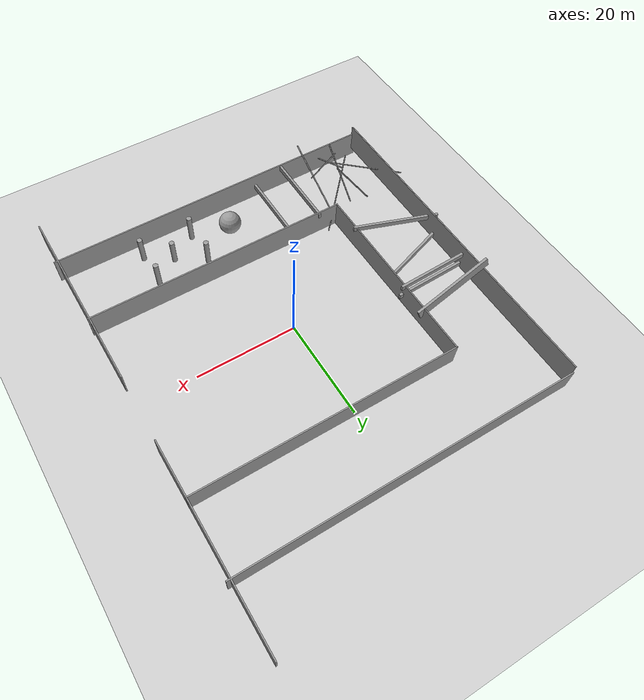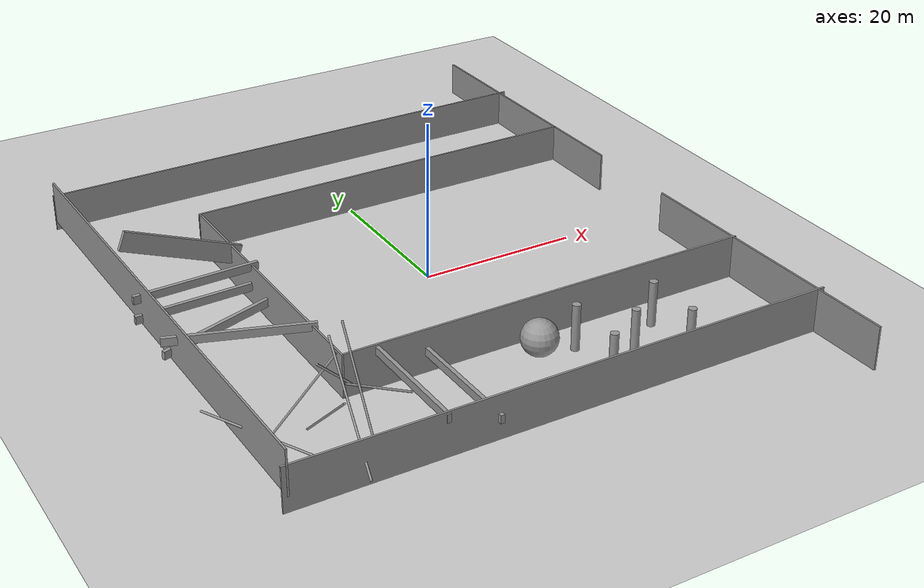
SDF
<sdf version="1.6">
 <world name="default">
  <model name="ground_plane">
   <static>1</static>
   <link name="link">
    <collision name="collision">
     <geometry><plane><normal>0 0 1</normal><size>100 100</size></plane></geometry>
     <surface><friction><ode><mu>100</mu><mu2>50</mu2></ode></friction></surface>
    </collision>
    <visual name="visual">
     <cast_shadows>0</cast_shadows>
     <geometry><plane><normal>0 0 1</normal><size>100 100</size></plane></geometry>
     <material>
      <script><uri>file://media/materials/scripts/gazebo.material</uri><name>Gazebo/Grey</name></script>
     </material>
    </visual>
   </link>
  </model>
  <model name="prueba_dron_0_0">
   <link name="link">
    <pose>-5.24977 -22.9832 0 0 -0 0</pose>
    <inertial>
     <mass>85.7654</mass>
     <inertia><ixx>212.016</ixx><ixy>0</ixy><ixz>0</ixz><iyy>32312.3</iyy><iyz>0</iyz><izz>32101.1</izz></inertia>
    </inertial>
    <visual name="visual">
     <geometry><box><size>67.018 0.235169 5.44144</size></box></geometry>
     <material>
      <script><name>Gazebo/Grey</name><uri>file://media/materials/scripts/gazebo.material</uri></script>
      <ambient>0.3 0.3 0.3 1</ambient>
      <diffuse>0.7 0.7 0.7 1</diffuse>
      <specular>0.01 0.01 0.01 1</specular>
      <emissive>0 0 0 1</emissive>
     </material>
    </visual>
    <collision name="collision">
     <geometry><box><size>67.018 0.235169 5.44144</size></box></geometry>
     <surface>
      <friction>
       <ode><mu>1</mu><mu2>1</mu2><fdir1>0 0 0</fdir1><slip1>0</slip1><slip2>0</slip2></ode>
       <torsional>
        <coefficient>1</coefficient>
        <patch_radius>0</patch_radius>
        <surface_radius>0</surface_radius>
        <use_patch_radius>1</use_patch_radius>
        <ode><slip>0</slip></ode>
       </torsional>
      </friction>
      <bounce><restitution_coefficient>0</restitution_coefficient><threshold>1e+06</threshold></bounce>
      <contact>
       <collide_without_contact>0</collide_without_contact>
       <collide_without_contact_bitmask>1</collide_without_contact_bitmask>
       <collide_bitmask>1</collide_bitmask>
       <ode>
        <soft_cfm>0</soft_cfm>
        <soft_erp>0.2</soft_erp>
        <kp>1e+13</kp>
        <kd>1</kd>
        <max_vel>0.01</max_vel>
        <min_depth>0</min_depth>
       </ode>
       <bullet>
        <split_impulse>1</split_impulse>
        <split_impulse_penetration_threshold>-0.01</split_impulse_penetration_threshold>
        <soft_cfm>0</soft_cfm>
        <soft_erp>0.2</soft_erp>
        <kp>1e+13</kp>
        <kd>1</kd>
       </bullet>
      </contact>
     </surface>
    </collision>
   </link>
   <link name="link_0">
    <pose>12.4694 -19.5562 -0 0 -0 0</pose>
    <inertial>
     <mass>5.87851</mass>
     <inertia><ixx>17.2959</ixx><ixy>0</ixy><ixz>0</ixz><iyy>17.2959</iyy><iyz>0</iyz><izz>0.734814</izz></inertia>
    </inertial>
    <visual name="visual">
     <geometry><cylinder><radius>0.5</radius><length>5.87852</length></cylinder></geometry>
     <material>
      <lighting>1</lighting>
      <script><uri>file://media/materials/scripts/gazebo.material</uri><name>Gazebo/Grey</name></script>
      <ambient>0.3 0.3 0.3 1</ambient>
      <diffuse>0.7 0.7 0.7 1</diffuse>
      <specular>0.01 0.01 0.01 1</specular>
      <emissive>0 0 0 1</emissive>
     </material>
    </visual>
    <collision name="collision">
     <geometry><cylinder><radius>0.5</radius><length>5.87852</length></cylinder></geometry>
     <surface>
      <friction>
       <ode><mu>1</mu><mu2>1</mu2><fdir1>0 0 0</fdir1><slip1>0</slip1><slip2>0</slip2></ode>
       <torsional>
        <coefficient>1</coefficient>
        <patch_radius>0</patch_radius>
        <surface_radius>0</surface_radius>
        <use_patch_radius>1</use_patch_radius>
        <ode><slip>0</slip></ode>
       </torsional>
      </friction>
      <bounce><restitution_coefficient>0</restitution_coefficient><threshold>1e+06</threshold></bounce>
      <contact>
       <collide_without_contact>0</collide_without_contact>
       <collide_without_contact_bitmask>1</collide_without_contact_bitmask>
       <collide_bitmask>1</collide_bitmask>
       <ode>
        <soft_cfm>0</soft_cfm>
        <soft_erp>0.2</soft_erp>
        <kp>1e+13</kp>
        <kd>1</kd>
        <max_vel>0.01</max_vel>
        <min_depth>0</min_depth>
       </ode>
       <bullet>
        <split_impulse>1</split_impulse>
        <split_impulse_penetration_threshold>-0.01</split_impulse_penetration_threshold>
        <soft_cfm>0</soft_cfm>
        <soft_erp>0.2</soft_erp>
        <kp>1e+13</kp>
        <kd>1</kd>
       </bullet>
      </contact>
     </surface>
    </collision>
   </link>
   <link name="link_1">
    <pose>12.4694 -12.5562 -0 0 -0 0</pose>
    <inertial>
     <mass>5.95576</mass>
     <inertia><ixx>17.977</ixx><ixy>0</ixy><ixz>0</ixz><iyy>17.977</iyy><iyz>0</iyz><izz>0.74447</izz></inertia>
    </inertial>
    <visual name="visual">
     <geometry><cylinder><radius>0.5</radius><length>5.95576</length></cylinder></geometry>
     <material>
      <lighting>1</lighting>
      <script><uri>file://media/materials/scripts/gazebo.material</uri><name>Gazebo/Grey</name></script>
      <ambient>0.3 0.3 0.3 1</ambient>
      <diffuse>0.7 0.7 0.7 1</diffuse>
      <specular>0.01 0.01 0.01 1</specular>
      <emissive>0 0 0 1</emissive>
     </material>
    </visual>
    <collision name="collision">
     <geometry><cylinder><radius>0.5</radius><length>5.95576</length></cylinder></geometry>
     <surface>
      <friction>
       <ode><mu>1</mu><mu2>1</mu2><fdir1>0 0 0</fdir1><slip1>0</slip1><slip2>0</slip2></ode>
       <torsional>
        <coefficient>1</coefficient>
        <patch_radius>0</patch_radius>
        <surface_radius>0</surface_radius>
        <use_patch_radius>1</use_patch_radius>
        <ode><slip>0</slip></ode>
       </torsional>
      </friction>
      <bounce><restitution_coefficient>0</restitution_coefficient><threshold>1e+06</threshold></bounce>
      <contact>
       <collide_without_contact>0</collide_without_contact>
       <collide_without_contact_bitmask>1</collide_without_contact_bitmask>
       <collide_bitmask>1</collide_bitmask>
       <ode>
        <soft_cfm>0</soft_cfm>
        <soft_erp>0.2</soft_erp>
        <kp>1e+13</kp>
        <kd>1</kd>
        <max_vel>0.01</max_vel>
        <min_depth>0</min_depth>
       </ode>
       <bullet>
        <split_impulse>1</split_impulse>
        <split_impulse_penetration_threshold>-0.01</split_impulse_penetration_threshold>
        <soft_cfm>0</soft_cfm>
        <soft_erp>0.2</soft_erp>
        <kp>1e+13</kp>
        <kd>1</kd>
       </bullet>
      </contact>
     </surface>
    </collision>
   </link>
   <link name="link_2">
    <pose>7.46938 -16.1137 -0 0 -0 0</pose>
    <inertial>
     <mass>5.24847</mass>
     <inertia><ixx>12.3761</ixx><ixy>0</ixy><ixz>0</ixz><iyy>12.3761</iyy><iyz>0</iyz><izz>0.656059</izz></inertia>
    </inertial>
    <visual name="visual">
     <geometry><cylinder><radius>0.5</radius><length>5.24847</length></cylinder></geometry>
     <material>
      <lighting>1</lighting>
      <script><uri>file://media/materials/scripts/gazebo.material</uri><name>Gazebo/Grey</name></script>
      <ambient>0.3 0.3 0.3 1</ambient>
      <diffuse>0.7 0.7 0.7 1</diffuse>
      <specular>0.01 0.01 0.01 1</specular>
      <emissive>0 0 0 1</emissive>
     </material>
    </visual>
    <collision name="collision">
     <geometry><cylinder><radius>0.5</radius><length>5.24847</length></cylinder></geometry>
     <surface>
      <friction>
       <ode><mu>1</mu><mu2>1</mu2><fdir1>0 0 0</fdir1><slip1>0</slip1><slip2>0</slip2></ode>
       <torsional>
        <coefficient>1</coefficient>
        <patch_radius>0</patch_radius>
        <surface_radius>0</surface_radius>
        <use_patch_radius>1</use_patch_radius>
        <ode><slip>0</slip></ode>
       </torsional>
      </friction>
      <bounce><restitution_coefficient>0</restitution_coefficient><threshold>1e+06</threshold></bounce>
      <contact>
       <collide_without_contact>0</collide_without_contact>
       <collide_without_contact_bitmask>1</collide_without_contact_bitmask>
       <collide_bitmask>1</collide_bitmask>
       <ode>
        <soft_cfm>0</soft_cfm>
        <soft_erp>0.2</soft_erp>
        <kp>1e+13</kp>
        <kd>1</kd>
        <max_vel>0.01</max_vel>
        <min_depth>0</min_depth>
       </ode>
       <bullet>
        <split_impulse>1</split_impulse>
        <split_impulse_penetration_threshold>-0.01</split_impulse_penetration_threshold>
        <soft_cfm>0</soft_cfm>
        <soft_erp>0.2</soft_erp>
        <kp>1e+13</kp>
        <kd>1</kd>
       </bullet>
      </contact>
     </surface>
    </collision>
   </link>
   <link name="link_3">
    <pose>1.98284 -12.5562 -0 0 -0 0</pose>
    <inertial>
     <mass>6.1347</mass>
     <inertia><ixx>19.6231</ixx><ixy>0</ixy><ixz>0</ixz><iyy>19.6231</iyy><iyz>0</iyz><izz>0.766838</izz></inertia>
    </inertial>
    <visual name="visual">
     <geometry><cylinder><radius>0.5</radius><length>6.1347</length></cylinder></geometry>
     <material>
      <lighting>1</lighting>
      <script><uri>file://media/materials/scripts/gazebo.material</uri><name>Gazebo/Grey</name></script>
      <ambient>0.3 0.3 0.3 1</ambient>
      <diffuse>0.7 0.7 0.7 1</diffuse>
      <specular>0.01 0.01 0.01 1</specular>
      <emissive>0 0 0 1</emissive>
     </material>
    </visual>
    <collision name="collision">
     <geometry><cylinder><radius>0.5</radius><length>6.1347</length></cylinder></geometry>
     <surface>
      <friction>
       <ode><mu>1</mu><mu2>1</mu2><fdir1>0 0 0</fdir1><slip1>0</slip1><slip2>0</slip2></ode>
       <torsional>
        <coefficient>1</coefficient>
        <patch_radius>0</patch_radius>
        <surface_radius>0</surface_radius>
        <use_patch_radius>1</use_patch_radius>
        <ode><slip>0</slip></ode>
       </torsional>
      </friction>
      <bounce><restitution_coefficient>0</restitution_coefficient><threshold>1e+06</threshold></bounce>
      <contact>
       <collide_without_contact>0</collide_without_contact>
       <collide_without_contact_bitmask>1</collide_without_contact_bitmask>
       <collide_bitmask>1</collide_bitmask>
       <ode>
        <soft_cfm>0</soft_cfm>
        <soft_erp>0.2</soft_erp>
        <kp>1e+13</kp>
        <kd>1</kd>
        <max_vel>0.01</max_vel>
        <min_depth>0</min_depth>
       </ode>
       <bullet>
        <split_impulse>1</split_impulse>
        <split_impulse_penetration_threshold>-0.01</split_impulse_penetration_threshold>
        <soft_cfm>0</soft_cfm>
        <soft_erp>0.2</soft_erp>
        <kp>1e+13</kp>
        <kd>1</kd>
       </bullet>
      </contact>
     </surface>
    </collision>
   </link>
   <link name="link_4">
    <pose>2.03774 -19.5562 -0 0 -0 0</pose>
    <inertial>
     <mass>5.97726</mass>
     <inertia><ixx>18.1697</ixx><ixy>0</ixy><ixz>0</ixz><iyy>18.1697</iyy><iyz>0</iyz><izz>0.747158</izz></inertia>
    </inertial>
    <visual name="visual">
     <geometry><cylinder><radius>0.5</radius><length>5.97727</length></cylinder></geometry>
     <material>
      <lighting>1</lighting>
      <script><uri>file://media/materials/scripts/gazebo.material</uri><name>Gazebo/Grey</name></script>
      <ambient>0.3 0.3 0.3 1</ambient>
      <diffuse>0.7 0.7 0.7 1</diffuse>
      <specular>0.01 0.01 0.01 1</specular>
      <emissive>0 0 0 1</emissive>
     </material>
    </visual>
    <collision name="collision">
     <geometry><cylinder><radius>0.5</radius><length>5.97727</length></cylinder></geometry>
     <surface>
      <friction>
       <ode><mu>1</mu><mu2>1</mu2><fdir1>0 0 0</fdir1><slip1>0</slip1><slip2>0</slip2></ode>
       <torsional>
        <coefficient>1</coefficient>
        <patch_radius>0</patch_radius>
        <surface_radius>0</surface_radius>
        <use_patch_radius>1</use_patch_radius>
        <ode><slip>0</slip></ode>
       </torsional>
      </friction>
      <bounce><restitution_coefficient>0</restitution_coefficient><threshold>1e+06</threshold></bounce>
      <contact>
       <collide_without_contact>0</collide_without_contact>
       <collide_without_contact_bitmask>1</collide_without_contact_bitmask>
       <collide_bitmask>1</collide_bitmask>
       <ode>
        <soft_cfm>0</soft_cfm>
        <soft_erp>0.2</soft_erp>
        <kp>1e+13</kp>
        <kd>1</kd>
        <max_vel>0.01</max_vel>
        <min_depth>0</min_depth>
       </ode>
       <bullet>
        <split_impulse>1</split_impulse>
        <split_impulse_penetration_threshold>-0.01</split_impulse_penetration_threshold>
        <soft_cfm>0</soft_cfm>
        <soft_erp>0.2</soft_erp>
        <kp>1e+13</kp>
        <kd>1</kd>
       </bullet>
      </contact>
     </surface>
    </collision>
   </link>
   <link name="link_5">
    <pose>-4.60337 -15.2115 2.23467 0 -0 0</pose>
    <inertial>
     <mass>78.0965</mass>
     <inertia><ixx>142.687</ixx><ixy>0</ixy><ixz>0</ixz><iyy>142.687</iyy><iyz>0</iyz><izz>142.687</izz></inertia>
    </inertial>
    <visual name="visual">
     <geometry><sphere><radius>2.13721</radius></sphere></geometry>
     <material>
      <lighting>1</lighting>
      <script><uri>file://media/materials/scripts/gazebo.material</uri><name>Gazebo/Grey</name></script>
      <ambient>0.3 0.3 0.3 1</ambient>
      <diffuse>0.7 0.7 0.7 1</diffuse>
      <specular>0.01 0.01 0.01 1</specular>
      <emissive>0 0 0 1</emissive>
     </material>
    </visual>
    <collision name="collision">
     <geometry><sphere><radius>2.13721</radius></sphere></geometry>
     <surface>
      <friction>
       <ode><mu>1</mu><mu2>1</mu2><fdir1>0 0 0</fdir1><slip1>0</slip1><slip2>0</slip2></ode>
       <torsional>
        <coefficient>1</coefficient>
        <patch_radius>0</patch_radius>
        <surface_radius>0</surface_radius>
        <use_patch_radius>1</use_patch_radius>
        <ode><slip>0</slip></ode>
       </torsional>
      </friction>
      <bounce><restitution_coefficient>0</restitution_coefficient><threshold>1e+06</threshold></bounce>
      <contact>
       <collide_without_contact>0</collide_without_contact>
       <collide_without_contact_bitmask>1</collide_without_contact_bitmask>
       <collide_bitmask>1</collide_bitmask>
       <ode>
        <soft_cfm>0</soft_cfm>
        <soft_erp>0.2</soft_erp>
        <kp>1e+13</kp>
        <kd>1</kd>
        <max_vel>0.01</max_vel>
        <min_depth>0</min_depth>
       </ode>
       <bullet>
        <split_impulse>1</split_impulse>
        <split_impulse_penetration_threshold>-0.01</split_impulse_penetration_threshold>
        <soft_cfm>0</soft_cfm>
        <soft_erp>0.2</soft_erp>
        <kp>1e+13</kp>
        <kd>1</kd>
       </bullet>
      </contact>
     </surface>
    </collision>
   </link>
   <link name="link_6">
    <pose>-14.4826 -15.8376 -0 0 -0 0</pose>
    <inertial>
     <mass>7.64164</mass>
     <inertia><ixx>152.705</ixx><ixy>0</ixy><ixz>0</ixz><iyy>0.792526</iyy><iyz>0</iyz><izz>152.224</izz></inertia>
    </inertial>
    <visual name="visual">
     <geometry><box><size>0.494495 15.4531 1</size></box></geometry>
     <material>
      <lighting>1</lighting>
      <script><uri>file://media/materials/scripts/gazebo.material</uri><name>Gazebo/Grey</name></script>
      <ambient>0.3 0.3 0.3 1</ambient>
      <diffuse>0.7 0.7 0.7 1</diffuse>
      <specular>0.01 0.01 0.01 1</specular>
      <emissive>0 0 0 1</emissive>
     </material>
    </visual>
    <collision name="collision">
     <geometry><box><size>0.494495 15.4531 1</size></box></geometry>
     <surface>
      <friction>
       <ode><mu>1</mu><mu2>1</mu2><fdir1>0 0 0</fdir1><slip1>0</slip1><slip2>0</slip2></ode>
       <torsional>
        <coefficient>1</coefficient>
        <patch_radius>0</patch_radius>
        <surface_radius>0</surface_radius>
        <use_patch_radius>1</use_patch_radius>
        <ode><slip>0</slip></ode>
       </torsional>
      </friction>
      <bounce><restitution_coefficient>0</restitution_coefficient><threshold>1e+06</threshold></bounce>
      <contact>
       <collide_without_contact>0</collide_without_contact>
       <collide_without_contact_bitmask>1</collide_without_contact_bitmask>
       <collide_bitmask>1</collide_bitmask>
       <ode>
        <soft_cfm>0</soft_cfm>
        <soft_erp>0.2</soft_erp>
        <kp>1e+13</kp>
        <kd>1</kd>
        <max_vel>0.01</max_vel>
        <min_depth>0</min_depth>
       </ode>
       <bullet>
        <split_impulse>1</split_impulse>
        <split_impulse_penetration_threshold>-0.01</split_impulse_penetration_threshold>
        <soft_cfm>0</soft_cfm>
        <soft_erp>0.2</soft_erp>
        <kp>1e+13</kp>
        <kd>1</kd>
       </bullet>
      </contact>
     </surface>
    </collision>
   </link>
   <link name="link_6_clone">
    <pose>-20.5306 -15.5562 2.00301 0 -0 0</pose>
    <inertial>
     <mass>7.64164</mass>
     <inertia><ixx>152.705</ixx><ixy>0</ixy><ixz>0</ixz><iyy>0.792526</iyy><iyz>0</iyz><izz>152.224</izz></inertia>
    </inertial>
    <visual name="visual">
     <geometry><box><size>0.494495 15.4531 1</size></box></geometry>
     <material>
      <lighting>1</lighting>
      <script><uri>file://media/materials/scripts/gazebo.material</uri><name>Gazebo/Grey</name></script>
      <ambient>0.3 0.3 0.3 1</ambient>
      <diffuse>0.7 0.7 0.7 1</diffuse>
      <specular>0.01 0.01 0.01 1</specular>
      <emissive>0 0 0 1</emissive>
      <shader type="pixel"/>
     </material>
    </visual>
    <collision name="collision">
     <geometry><box><size>0.494495 15.4531 1</size></box></geometry>
     <surface>
      <friction>
       <ode><mu>1</mu><mu2>1</mu2><fdir1>0 0 0</fdir1><slip1>0</slip1><slip2>0</slip2></ode>
       <torsional>
        <coefficient>1</coefficient>
        <patch_radius>0</patch_radius>
        <surface_radius>0</surface_radius>
        <use_patch_radius>1</use_patch_radius>
        <ode><slip>0</slip></ode>
       </torsional>
      </friction>
      <bounce><restitution_coefficient>0</restitution_coefficient><threshold>1e+06</threshold></bounce>
      <contact>
       <collide_without_contact>0</collide_without_contact>
       <collide_without_contact_bitmask>1</collide_without_contact_bitmask>
       <collide_bitmask>1</collide_bitmask>
       <ode>
        <soft_cfm>0</soft_cfm>
        <soft_erp>0.2</soft_erp>
        <kp>1e+13</kp>
        <kd>1</kd>
        <max_vel>0.01</max_vel>
        <min_depth>0</min_depth>
       </ode>
       <bullet>
        <split_impulse>1</split_impulse>
        <split_impulse_penetration_threshold>-0.01</split_impulse_penetration_threshold>
        <soft_cfm>0</soft_cfm>
        <soft_erp>0.2</soft_erp>
        <kp>1e+13</kp>
        <kd>1</kd>
       </bullet>
      </contact>
     </surface>
    </collision>
   </link>
   <link name="link_6_clone_clone">
    <pose>-32.0268 1.35833 2.56444 0 -0 1.23777</pose>
    <inertial>
     <mass>8.31401</mass>
     <inertia><ixx>196.537</ixx><ixy>0</ixy><ixz>0</ixz><iyy>0.862258</iyy><iyz>0</iyz><izz>196.013</izz></inertia>
    </inertial>
    <visual name="visual">
     <geometry><box><size>0.494495 16.8128 1</size></box></geometry>
     <material>
      <lighting>1</lighting>
      <script><uri>file://media/materials/scripts/gazebo.material</uri><name>Gazebo/Grey</name></script>
      <ambient>0.3 0.3 0.3 1</ambient>
      <diffuse>0.7 0.7 0.7 1</diffuse>
      <specular>0.01 0.01 0.01 1</specular>
      <emissive>0 0 0 1</emissive>
      <shader type="pixel"/>
     </material>
    </visual>
    <collision name="collision">
     <geometry><box><size>0.494495 16.8128 1</size></box></geometry>
     <surface>
      <friction>
       <ode><mu>1</mu><mu2>1</mu2><fdir1>0 0 0</fdir1><slip1>0</slip1><slip2>0</slip2></ode>
       <torsional>
        <coefficient>1</coefficient>
        <patch_radius>0</patch_radius>
        <surface_radius>0</surface_radius>
        <use_patch_radius>1</use_patch_radius>
        <ode><slip>0</slip></ode>
       </torsional>
      </friction>
      <bounce><restitution_coefficient>0</restitution_coefficient><threshold>1e+06</threshold></bounce>
      <contact>
       <collide_without_contact>0</collide_without_contact>
       <collide_without_contact_bitmask>1</collide_without_contact_bitmask>
       <collide_bitmask>1</collide_bitmask>
       <ode>
        <soft_cfm>0</soft_cfm>
        <soft_erp>0.2</soft_erp>
        <kp>1e+13</kp>
        <kd>1</kd>
        <max_vel>0.01</max_vel>
        <min_depth>0</min_depth>
       </ode>
       <bullet>
        <split_impulse>1</split_impulse>
        <split_impulse_penetration_threshold>-0.01</split_impulse_penetration_threshold>
        <soft_cfm>0</soft_cfm>
        <soft_erp>0.2</soft_erp>
        <kp>1e+13</kp>
        <kd>1</kd>
       </bullet>
      </contact>
     </surface>
    </collision>
   </link>
   <link name="link_6_clone_clone_clone">
    <pose>-31.987 7.95678 -0.088563 0 -0 1.89398</pose>
    <inertial>
     <mass>7.64164</mass>
     <inertia><ixx>152.705</ixx><ixy>0</ixy><ixz>0</ixz><iyy>0.792526</iyy><iyz>0</iyz><izz>152.224</izz></inertia>
    </inertial>
    <visual name="visual">
     <geometry><box><size>0.494495 15.4531 1</size></box></geometry>
     <material>
      <lighting>1</lighting>
      <script><uri>file://media/materials/scripts/gazebo.material</uri><name>Gazebo/Grey</name></script>
      <ambient>0.3 0.3 0.3 1</ambient>
      <diffuse>0.7 0.7 0.7 1</diffuse>
      <specular>0.01 0.01 0.01 1</specular>
      <emissive>0 0 0 1</emissive>
      <shader type="pixel"/>
     </material>
    </visual>
    <collision name="collision">
     <geometry><box><size>0.494495 15.4531 1</size></box></geometry>
     <surface>
      <friction>
       <ode><mu>1</mu><mu2>1</mu2><fdir1>0 0 0</fdir1><slip1>0</slip1><slip2>0</slip2></ode>
       <torsional>
        <coefficient>1</coefficient>
        <patch_radius>0</patch_radius>
        <surface_radius>0</surface_radius>
        <use_patch_radius>1</use_patch_radius>
        <ode><slip>0</slip></ode>
       </torsional>
      </friction>
      <bounce><restitution_coefficient>0</restitution_coefficient><threshold>1e+06</threshold></bounce>
      <contact>
       <collide_without_contact>0</collide_without_contact>
       <collide_without_contact_bitmask>1</collide_without_contact_bitmask>
       <collide_bitmask>1</collide_bitmask>
       <ode>
        <soft_cfm>0</soft_cfm>
        <soft_erp>0.2</soft_erp>
        <kp>1e+13</kp>
        <kd>1</kd>
        <max_vel>0.01</max_vel>
        <min_depth>0</min_depth>
       </ode>
       <bullet>
        <split_impulse>1</split_impulse>
        <split_impulse_penetration_threshold>-0.01</split_impulse_penetration_threshold>
        <soft_cfm>0</soft_cfm>
        <soft_erp>0.2</soft_erp>
        <kp>1e+13</kp>
        <kd>1</kd>
       </bullet>
      </contact>
     </surface>
    </collision>
   </link>
   <link name="link_6_clone_clone_clone_clone">
    <pose>-31.5306 14.4438 -0.088563 0 -0 1.60461</pose>
    <inertial>
     <mass>7.64164</mass>
     <inertia><ixx>152.705</ixx><ixy>0</ixy><ixz>0</ixz><iyy>0.792526</iyy><iyz>0</iyz><izz>152.224</izz></inertia>
    </inertial>
    <visual name="visual">
     <geometry><box><size>0.494495 15.4531 1</size></box></geometry>
     <material>
      <lighting>1</lighting>
      <script><uri>file://media/materials/scripts/gazebo.material</uri><name>Gazebo/Grey</name></script>
      <ambient>0.3 0.3 0.3 1</ambient>
      <diffuse>0.7 0.7 0.7 1</diffuse>
      <specular>0.01 0.01 0.01 1</specular>
      <emissive>0 0 0 1</emissive>
      <shader type="pixel"/>
     </material>
    </visual>
    <collision name="collision">
     <geometry><box><size>0.494495 15.4531 1</size></box></geometry>
     <surface>
      <friction>
       <ode><mu>1</mu><mu2>1</mu2><fdir1>0 0 0</fdir1><slip1>0</slip1><slip2>0</slip2></ode>
       <torsional>
        <coefficient>1</coefficient>
        <patch_radius>0</patch_radius>
        <surface_radius>0</surface_radius>
        <use_patch_radius>1</use_patch_radius>
        <ode><slip>0</slip></ode>
       </torsional>
      </friction>
      <bounce><restitution_coefficient>0</restitution_coefficient><threshold>1e+06</threshold></bounce>
      <contact>
       <collide_without_contact>0</collide_without_contact>
       <collide_without_contact_bitmask>1</collide_without_contact_bitmask>
       <collide_bitmask>1</collide_bitmask>
       <ode>
        <soft_cfm>0</soft_cfm>
        <soft_erp>0.2</soft_erp>
        <kp>1e+13</kp>
        <kd>1</kd>
        <max_vel>0.01</max_vel>
        <min_depth>0</min_depth>
       </ode>
       <bullet>
        <split_impulse>1</split_impulse>
        <split_impulse_penetration_threshold>-0.01</split_impulse_penetration_threshold>
        <soft_cfm>0</soft_cfm>
        <soft_erp>0.2</soft_erp>
        <kp>1e+13</kp>
        <kd>1</kd>
       </bullet>
      </contact>
     </surface>
    </collision>
   </link>
   <link name="link_6_clone_clone_clone_clone_clone">
    <pose>-31.5539 14.445 2.48955 0 -0 1.60461</pose>
    <inertial>
     <mass>7.64164</mass>
     <inertia><ixx>152.705</ixx><ixy>0</ixy><ixz>0</ixz><iyy>0.792526</iyy><iyz>0</iyz><izz>152.224</izz></inertia>
    </inertial>
    <visual name="visual">
     <geometry><box><size>0.494495 15.4531 1</size></box></geometry>
     <material>
      <lighting>1</lighting>
      <script><uri>file://media/materials/scripts/gazebo.material</uri><name>Gazebo/Grey</name></script>
      <ambient>0.3 0.3 0.3 1</ambient>
      <diffuse>0.7 0.7 0.7 1</diffuse>
      <specular>0.01 0.01 0.01 1</specular>
      <emissive>0 0 0 1</emissive>
      <shader type="pixel"/>
     </material>
    </visual>
    <collision name="collision">
     <geometry><box><size>0.494495 15.4531 1</size></box></geometry>
     <surface>
      <friction>
       <ode><mu>1</mu><mu2>1</mu2><fdir1>0 0 0</fdir1><slip1>0</slip1><slip2>0</slip2></ode>
       <torsional>
        <coefficient>1</coefficient>
        <patch_radius>0</patch_radius>
        <surface_radius>0</surface_radius>
        <use_patch_radius>1</use_patch_radius>
        <ode><slip>0</slip></ode>
       </torsional>
      </friction>
      <bounce><restitution_coefficient>0</restitution_coefficient><threshold>1e+06</threshold></bounce>
      <contact>
       <collide_without_contact>0</collide_without_contact>
       <collide_without_contact_bitmask>1</collide_without_contact_bitmask>
       <collide_bitmask>1</collide_bitmask>
       <ode>
        <soft_cfm>0</soft_cfm>
        <soft_erp>0.2</soft_erp>
        <kp>1e+13</kp>
        <kd>1</kd>
        <max_vel>0.01</max_vel>
        <min_depth>0</min_depth>
       </ode>
       <bullet>
        <split_impulse>1</split_impulse>
        <split_impulse_penetration_threshold>-0.01</split_impulse_penetration_threshold>
        <soft_cfm>0</soft_cfm>
        <soft_erp>0.2</soft_erp>
        <kp>1e+13</kp>
        <kd>1</kd>
       </bullet>
      </contact>
     </surface>
    </collision>
   </link>
   <link name="link_6_clone_clone_clone_clone_clone_clone">
    <pose>-30.8869 20.2129 4.11657 0.383286 -0 1.60461</pose>
    <inertial>
     <mass>18.5249</mass>
     <inertia><ixx>377.716</ixx><ixy>0</ixy><ixz>0</ixz><iyy>9.44924</iyy><iyz>0</iyz><izz>369.022</izz></inertia>
    </inertial>
    <visual name="visual">
     <geometry><box><size>0.494495 15.4531 2.42421</size></box></geometry>
     <material>
      <lighting>1</lighting>
      <script><uri>file://media/materials/scripts/gazebo.material</uri><name>Gazebo/Grey</name></script>
      <ambient>0.3 0.3 0.3 1</ambient>
      <diffuse>0.7 0.7 0.7 1</diffuse>
      <specular>0.01 0.01 0.01 1</specular>
      <emissive>0 0 0 1</emissive>
      <shader type="pixel"/>
     </material>
    </visual>
    <collision name="collision">
     <geometry><box><size>0.494495 15.4531 2.42421</size></box></geometry>
     <surface>
      <friction>
       <ode><mu>1</mu><mu2>1</mu2><fdir1>0 0 0</fdir1><slip1>0</slip1><slip2>0</slip2></ode>
       <torsional>
        <coefficient>1</coefficient>
        <patch_radius>0</patch_radius>
        <surface_radius>0</surface_radius>
        <use_patch_radius>1</use_patch_radius>
        <ode><slip>0</slip></ode>
       </torsional>
      </friction>
      <bounce><restitution_coefficient>0</restitution_coefficient><threshold>1e+06</threshold></bounce>
      <contact>
       <collide_without_contact>0</collide_without_contact>
       <collide_without_contact_bitmask>1</collide_without_contact_bitmask>
       <collide_bitmask>1</collide_bitmask>
       <ode>
        <soft_cfm>0</soft_cfm>
        <soft_erp>0.2</soft_erp>
        <kp>1e+13</kp>
        <kd>1</kd>
        <max_vel>0.01</max_vel>
        <min_depth>0</min_depth>
       </ode>
       <bullet>
        <split_impulse>1</split_impulse>
        <split_impulse_penetration_threshold>-0.01</split_impulse_penetration_threshold>
        <soft_cfm>0</soft_cfm>
        <soft_erp>0.2</soft_erp>
        <kp>1e+13</kp>
        <kd>1</kd>
       </bullet>
      </contact>
     </surface>
    </collision>
   </link>
   <link name="link_7">
    <pose>-27.1506 -17.5633 3.42663 -0.522312 0 0</pose>
    <inertial>
     <mass>0.951436</mass>
     <inertia>
      <ixx>19.8593</ixx>
      <ixy>0</ixy>
      <ixz>0</ixz>
      <iyy>19.8593</iyy>
      <iyz>0</iyz>
      <izz>0.0071503</izz>
     </inertia>
    </inertial>
    <visual name="visual">
     <geometry><cylinder><radius>0.122586</radius><length>15.8251</length></cylinder></geometry>
     <material>
      <lighting>1</lighting>
      <script><uri>file://media/materials/scripts/gazebo.material</uri><name>Gazebo/Grey</name></script>
      <ambient>0.3 0.3 0.3 1</ambient>
      <diffuse>0.7 0.7 0.7 1</diffuse>
      <specular>0.01 0.01 0.01 1</specular>
      <emissive>0 0 0 1</emissive>
     </material>
    </visual>
    <collision name="collision">
     <geometry><cylinder><radius>0.122586</radius><length>15.8251</length></cylinder></geometry>
     <surface>
      <friction>
       <ode><mu>1</mu><mu2>1</mu2><fdir1>0 0 0</fdir1><slip1>0</slip1><slip2>0</slip2></ode>
       <torsional>
        <coefficient>1</coefficient>
        <patch_radius>0</patch_radius>
        <surface_radius>0</surface_radius>
        <use_patch_radius>1</use_patch_radius>
        <ode><slip>0</slip></ode>
       </torsional>
      </friction>
      <bounce><restitution_coefficient>0</restitution_coefficient><threshold>1e+06</threshold></bounce>
      <contact>
       <collide_without_contact>0</collide_without_contact>
       <collide_without_contact_bitmask>1</collide_without_contact_bitmask>
       <collide_bitmask>1</collide_bitmask>
       <ode>
        <soft_cfm>0</soft_cfm>
        <soft_erp>0.2</soft_erp>
        <kp>1e+13</kp>
        <kd>1</kd>
        <max_vel>0.01</max_vel>
        <min_depth>0</min_depth>
       </ode>
       <bullet>
        <split_impulse>1</split_impulse>
        <split_impulse_penetration_threshold>-0.01</split_impulse_penetration_threshold>
        <soft_cfm>0</soft_cfm>
        <soft_erp>0.2</soft_erp>
        <kp>1e+13</kp>
        <kd>1</kd>
       </bullet>
      </contact>
     </surface>
    </collision>
   </link>
   <link name="link_7_clone">
    <pose>-24.4361 -15.6879 2.66609 1.11642 -0 0</pose>
    <inertial>
     <mass>0.951436</mass>
     <inertia>
      <ixx>19.8593</ixx>
      <ixy>0</ixy>
      <ixz>0</ixz>
      <iyy>19.8593</iyy>
      <iyz>0</iyz>
      <izz>0.0071503</izz>
     </inertia>
    </inertial>
    <visual name="visual">
     <geometry><cylinder><radius>0.122586</radius><length>15.8251</length></cylinder></geometry>
     <material>
      <lighting>1</lighting>
      <script><uri>file://media/materials/scripts/gazebo.material</uri><name>Gazebo/Grey</name></script>
      <ambient>0.3 0.3 0.3 1</ambient>
      <diffuse>0.7 0.7 0.7 1</diffuse>
      <specular>0.01 0.01 0.01 1</specular>
      <emissive>0 0 0 1</emissive>
      <shader type="pixel"/>
     </material>
    </visual>
    <collision name="collision">
     <geometry><cylinder><radius>0.122586</radius><length>15.8251</length></cylinder></geometry>
     <surface>
      <friction>
       <ode><mu>1</mu><mu2>1</mu2><fdir1>0 0 0</fdir1><slip1>0</slip1><slip2>0</slip2></ode>
       <torsional>
        <coefficient>1</coefficient>
        <patch_radius>0</patch_radius>
        <surface_radius>0</surface_radius>
        <use_patch_radius>1</use_patch_radius>
        <ode><slip>0</slip></ode>
       </torsional>
      </friction>
      <bounce><restitution_coefficient>0</restitution_coefficient><threshold>1e+06</threshold></bounce>
      <contact>
       <collide_without_contact>0</collide_without_contact>
       <collide_without_contact_bitmask>1</collide_without_contact_bitmask>
       <collide_bitmask>1</collide_bitmask>
       <ode>
        <soft_cfm>0</soft_cfm>
        <soft_erp>0.2</soft_erp>
        <kp>1e+13</kp>
        <kd>1</kd>
        <max_vel>0.01</max_vel>
        <min_depth>0</min_depth>
       </ode>
       <bullet>
        <split_impulse>1</split_impulse>
        <split_impulse_penetration_threshold>-0.01</split_impulse_penetration_threshold>
        <soft_cfm>0</soft_cfm>
        <soft_erp>0.2</soft_erp>
        <kp>1e+13</kp>
        <kd>1</kd>
       </bullet>
      </contact>
     </surface>
    </collision>
   </link>
   <link name="link_7_clone_0">
    <pose>-26.3536 -10.8289 1.93794 2.44091 -0.559361 1.76414</pose>
    <inertial>
     <mass>0.951436</mass>
     <inertia>
      <ixx>19.8593</ixx>
      <ixy>0</ixy>
      <ixz>0</ixz>
      <iyy>19.8593</iyy>
      <iyz>0</iyz>
      <izz>0.0071503</izz>
     </inertia>
    </inertial>
    <visual name="visual">
     <geometry><cylinder><radius>0.122586</radius><length>15.8251</length></cylinder></geometry>
     <material>
      <lighting>1</lighting>
      <script><uri>file://media/materials/scripts/gazebo.material</uri><name>Gazebo/Grey</name></script>
      <ambient>0.3 0.3 0.3 1</ambient>
      <diffuse>0.7 0.7 0.7 1</diffuse>
      <specular>0.01 0.01 0.01 1</specular>
      <emissive>0 0 0 1</emissive>
      <shader type="pixel"/>
     </material>
    </visual>
    <collision name="collision">
     <geometry><cylinder><radius>0.122586</radius><length>15.8251</length></cylinder></geometry>
     <surface>
      <friction>
       <ode><mu>1</mu><mu2>1</mu2><fdir1>0 0 0</fdir1><slip1>0</slip1><slip2>0</slip2></ode>
       <torsional>
        <coefficient>1</coefficient>
        <patch_radius>0</patch_radius>
        <surface_radius>0</surface_radius>
        <use_patch_radius>1</use_patch_radius>
        <ode><slip>0</slip></ode>
       </torsional>
      </friction>
      <bounce><restitution_coefficient>0</restitution_coefficient><threshold>1e+06</threshold></bounce>
      <contact>
       <collide_without_contact>0</collide_without_contact>
       <collide_without_contact_bitmask>1</collide_without_contact_bitmask>
       <collide_bitmask>1</collide_bitmask>
       <ode>
        <soft_cfm>0</soft_cfm>
        <soft_erp>0.2</soft_erp>
        <kp>1e+13</kp>
        <kd>1</kd>
        <max_vel>0.01</max_vel>
        <min_depth>0</min_depth>
       </ode>
       <bullet>
        <split_impulse>1</split_impulse>
        <split_impulse_penetration_threshold>-0.01</split_impulse_penetration_threshold>
        <soft_cfm>0</soft_cfm>
        <soft_erp>0.2</soft_erp>
        <kp>1e+13</kp>
        <kd>1</kd>
       </bullet>
      </contact>
     </surface>
    </collision>
   </link>
   <link name="link_7_clone_1">
    <pose>-28.9418 -18.2259 3.34926 -0.959238 0.13543 -0.078519</pose>
    <inertial>
     <mass>0.951436</mass>
     <inertia>
      <ixx>19.8593</ixx>
      <ixy>0</ixy>
      <ixz>0</ixz>
      <iyy>19.8593</iyy>
      <iyz>0</iyz>
      <izz>0.0071503</izz>
     </inertia>
    </inertial>
    <visual name="visual">
     <geometry><cylinder><radius>0.122586</radius><length>15.8251</length></cylinder></geometry>
     <material>
      <lighting>1</lighting>
      <script><uri>file://media/materials/scripts/gazebo.material</uri><name>Gazebo/Grey</name></script>
      <ambient>0.3 0.3 0.3 1</ambient>
      <diffuse>0.7 0.7 0.7 1</diffuse>
      <specular>0.01 0.01 0.01 1</specular>
      <emissive>0 0 0 1</emissive>
      <shader type="pixel"/>
     </material>
    </visual>
    <collision name="collision">
     <geometry><cylinder><radius>0.122586</radius><length>15.8251</length></cylinder></geometry>
     <surface>
      <friction>
       <ode><mu>1</mu><mu2>1</mu2><fdir1>0 0 0</fdir1><slip1>0</slip1><slip2>0</slip2></ode>
       <torsional>
        <coefficient>1</coefficient>
        <patch_radius>0</patch_radius>
        <surface_radius>0</surface_radius>
        <use_patch_radius>1</use_patch_radius>
        <ode><slip>0</slip></ode>
       </torsional>
      </friction>
      <bounce><restitution_coefficient>0</restitution_coefficient><threshold>1e+06</threshold></bounce>
      <contact>
       <collide_without_contact>0</collide_without_contact>
       <collide_without_contact_bitmask>1</collide_without_contact_bitmask>
       <collide_bitmask>1</collide_bitmask>
       <ode>
        <soft_cfm>0</soft_cfm>
        <soft_erp>0.2</soft_erp>
        <kp>1e+13</kp>
        <kd>1</kd>
        <max_vel>0.01</max_vel>
        <min_depth>0</min_depth>
       </ode>
       <bullet>
        <split_impulse>1</split_impulse>
        <split_impulse_penetration_threshold>-0.01</split_impulse_penetration_threshold>
        <soft_cfm>0</soft_cfm>
        <soft_erp>0.2</soft_erp>
        <kp>1e+13</kp>
        <kd>1</kd>
       </bullet>
      </contact>
     </surface>
    </collision>
   </link>
   <link name="link_7_clone_2">
    <pose>-36.2913 -15.4597 0.511136 -1.34267 -0.703766 0.510448</pose>
    <inertial>
     <mass>0.951436</mass>
     <inertia>
      <ixx>19.8593</ixx>
      <ixy>0</ixy>
      <ixz>0</ixz>
      <iyy>19.8593</iyy>
      <iyz>0</iyz>
      <izz>0.0071503</izz>
     </inertia>
    </inertial>
    <visual name="visual">
     <geometry><cylinder><radius>0.122586</radius><length>15.8251</length></cylinder></geometry>
     <material>
      <lighting>1</lighting>
      <script><uri>file://media/materials/scripts/gazebo.material</uri><name>Gazebo/Grey</name></script>
      <ambient>0.3 0.3 0.3 1</ambient>
      <diffuse>0.7 0.7 0.7 1</diffuse>
      <specular>0.01 0.01 0.01 1</specular>
      <emissive>0 0 0 1</emissive>
      <shader type="pixel"/>
     </material>
    </visual>
    <collision name="collision">
     <geometry><cylinder><radius>0.122586</radius><length>15.8251</length></cylinder></geometry>
     <surface>
      <friction>
       <ode><mu>1</mu><mu2>1</mu2><fdir1>0 0 0</fdir1><slip1>0</slip1><slip2>0</slip2></ode>
       <torsional>
        <coefficient>1</coefficient>
        <patch_radius>0</patch_radius>
        <surface_radius>0</surface_radius>
        <use_patch_radius>1</use_patch_radius>
        <ode><slip>0</slip></ode>
       </torsional>
      </friction>
      <bounce><restitution_coefficient>0</restitution_coefficient><threshold>1e+06</threshold></bounce>
      <contact>
       <collide_without_contact>0</collide_without_contact>
       <collide_without_contact_bitmask>1</collide_without_contact_bitmask>
       <collide_bitmask>1</collide_bitmask>
       <ode>
        <soft_cfm>0</soft_cfm>
        <soft_erp>0.2</soft_erp>
        <kp>1e+13</kp>
        <kd>1</kd>
        <max_vel>0.01</max_vel>
        <min_depth>0</min_depth>
       </ode>
       <bullet>
        <split_impulse>1</split_impulse>
        <split_impulse_penetration_threshold>-0.01</split_impulse_penetration_threshold>
        <soft_cfm>0</soft_cfm>
        <soft_erp>0.2</soft_erp>
        <kp>1e+13</kp>
        <kd>1</kd>
       </bullet>
      </contact>
     </surface>
    </collision>
   </link>
   <link name="link_7_clone_3">
    <pose>-30.526 -14.5562 0.113693 0.828801 -0 0</pose>
    <inertial>
     <mass>0.951436</mass>
     <inertia>
      <ixx>19.8593</ixx>
      <ixy>0</ixy>
      <ixz>0</ixz>
      <iyy>19.8593</iyy>
      <iyz>0</iyz>
      <izz>0.0071503</izz>
     </inertia>
    </inertial>
    <visual name="visual">
     <geometry><cylinder><radius>0.122586</radius><length>15.8251</length></cylinder></geometry>
     <material>
      <lighting>1</lighting>
      <script><uri>file://media/materials/scripts/gazebo.material</uri><name>Gazebo/Grey</name></script>
      <ambient>0.3 0.3 0.3 1</ambient>
      <diffuse>0.7 0.7 0.7 1</diffuse>
      <specular>0.01 0.01 0.01 1</specular>
      <emissive>0 0 0 1</emissive>
      <shader type="pixel"/>
     </material>
    </visual>
    <collision name="collision">
     <geometry><cylinder><radius>0.122586</radius><length>15.8251</length></cylinder></geometry>
     <surface>
      <friction>
       <ode><mu>1</mu><mu2>1</mu2><fdir1>0 0 0</fdir1><slip1>0</slip1><slip2>0</slip2></ode>
       <torsional>
        <coefficient>1</coefficient>
        <patch_radius>0</patch_radius>
        <surface_radius>0</surface_radius>
        <use_patch_radius>1</use_patch_radius>
        <ode><slip>0</slip></ode>
       </torsional>
      </friction>
      <bounce><restitution_coefficient>0</restitution_coefficient><threshold>1e+06</threshold></bounce>
      <contact>
       <collide_without_contact>0</collide_without_contact>
       <collide_without_contact_bitmask>1</collide_without_contact_bitmask>
       <collide_bitmask>1</collide_bitmask>
       <ode>
        <soft_cfm>0</soft_cfm>
        <soft_erp>0.2</soft_erp>
        <kp>1e+13</kp>
        <kd>1</kd>
        <max_vel>0.01</max_vel>
        <min_depth>0</min_depth>
       </ode>
       <bullet>
        <split_impulse>1</split_impulse>
        <split_impulse_penetration_threshold>-0.01</split_impulse_penetration_threshold>
        <soft_cfm>0</soft_cfm>
        <soft_erp>0.2</soft_erp>
        <kp>1e+13</kp>
        <kd>1</kd>
       </bullet>
      </contact>
     </surface>
    </collision>
   </link>
   <link name="link_7_clone_4">
    <pose>-32.2181 -11.4726 0.168118 2.49269 -0.031623 -1.98694</pose>
    <inertial>
     <mass>0.951436</mass>
     <inertia>
      <ixx>19.8593</ixx>
      <ixy>0</ixy>
      <ixz>0</ixz>
      <iyy>19.8593</iyy>
      <iyz>0</iyz>
      <izz>0.0071503</izz>
     </inertia>
    </inertial>
    <visual name="visual">
     <geometry><cylinder><radius>0.122586</radius><length>15.8251</length></cylinder></geometry>
     <material>
      <lighting>1</lighting>
      <script><uri>file://media/materials/scripts/gazebo.material</uri><name>Gazebo/Grey</name></script>
      <ambient>0.3 0.3 0.3 1</ambient>
      <diffuse>0.7 0.7 0.7 1</diffuse>
      <specular>0.01 0.01 0.01 1</specular>
      <emissive>0 0 0 1</emissive>
      <shader type="pixel"/>
     </material>
    </visual>
    <collision name="collision">
     <geometry><cylinder><radius>0.122586</radius><length>15.8251</length></cylinder></geometry>
     <surface>
      <friction>
       <ode><mu>1</mu><mu2>1</mu2><fdir1>0 0 0</fdir1><slip1>0</slip1><slip2>0</slip2></ode>
       <torsional>
        <coefficient>1</coefficient>
        <patch_radius>0</patch_radius>
        <surface_radius>0</surface_radius>
        <use_patch_radius>1</use_patch_radius>
        <ode><slip>0</slip></ode>
       </torsional>
      </friction>
      <bounce><restitution_coefficient>0</restitution_coefficient><threshold>1e+06</threshold></bounce>
      <contact>
       <collide_without_contact>0</collide_without_contact>
       <collide_without_contact_bitmask>1</collide_without_contact_bitmask>
       <collide_bitmask>1</collide_bitmask>
       <ode>
        <soft_cfm>0</soft_cfm>
        <soft_erp>0.2</soft_erp>
        <kp>1e+13</kp>
        <kd>1</kd>
        <max_vel>0.01</max_vel>
        <min_depth>0</min_depth>
       </ode>
       <bullet>
        <split_impulse>1</split_impulse>
        <split_impulse_penetration_threshold>-0.01</split_impulse_penetration_threshold>
        <soft_cfm>0</soft_cfm>
        <soft_erp>0.2</soft_erp>
        <kp>1e+13</kp>
        <kd>1</kd>
       </bullet>
      </contact>
     </surface>
    </collision>
   </link>
   <link name="link_clone">
    <pose>-38.2499 10.4038 1.81381 0 -0 -1.5668</pose>
    <inertial>
     <mass>85.7654</mass>
     <inertia><ixx>212.016</ixx><ixy>0</ixy><ixz>0</ixz><iyy>32312.3</iyy><iyz>0</iyz><izz>32101.1</izz></inertia>
    </inertial>
    <visual name="visual">
     <geometry><box><size>67.018 0.235169 5.44144</size></box></geometry>
     <material>
      <script><name>Gazebo/Grey</name><uri>file://media/materials/scripts/gazebo.material</uri></script>
      <ambient>0.3 0.3 0.3 1</ambient>
      <diffuse>0.7 0.7 0.7 1</diffuse>
      <specular>0.01 0.01 0.01 1</specular>
      <emissive>0 0 0 1</emissive>
      <shader type="pixel"/>
     </material>
    </visual>
    <collision name="collision">
     <geometry><box><size>67.018 0.235169 5.44144</size></box></geometry>
     <surface>
      <friction>
       <ode><mu>1</mu><mu2>1</mu2><fdir1>0 0 0</fdir1><slip1>0</slip1><slip2>0</slip2></ode>
       <torsional>
        <coefficient>1</coefficient>
        <patch_radius>0</patch_radius>
        <surface_radius>0</surface_radius>
        <use_patch_radius>1</use_patch_radius>
        <ode><slip>0</slip></ode>
       </torsional>
      </friction>
      <bounce><restitution_coefficient>0</restitution_coefficient><threshold>1e+06</threshold></bounce>
      <contact>
       <collide_without_contact>0</collide_without_contact>
       <collide_without_contact_bitmask>1</collide_without_contact_bitmask>
       <collide_bitmask>1</collide_bitmask>
       <ode>
        <soft_cfm>0</soft_cfm>
        <soft_erp>0.2</soft_erp>
        <kp>1e+13</kp>
        <kd>1</kd>
        <max_vel>0.01</max_vel>
        <min_depth>0</min_depth>
       </ode>
       <bullet>
        <split_impulse>1</split_impulse>
        <split_impulse_penetration_threshold>-0.01</split_impulse_penetration_threshold>
        <soft_cfm>0</soft_cfm>
        <soft_erp>0.2</soft_erp>
        <kp>1e+13</kp>
        <kd>1</kd>
       </bullet>
      </contact>
     </surface>
    </collision>
   </link>
   <link name="link_clone_0">
    <pose>-5.09065 44.0154 1e-06 0 -0 0</pose>
    <inertial>
     <mass>85.7654</mass>
     <inertia><ixx>212.016</ixx><ixy>0</ixy><ixz>0</ixz><iyy>32312.3</iyy><iyz>0</iyz><izz>32101.1</izz></inertia>
    </inertial>
    <visual name="visual">
     <geometry><box><size>67.018 0.235169 5.44144</size></box></geometry>
     <material>
      <script><name>Gazebo/Grey</name><uri>file://media/materials/scripts/gazebo.material</uri></script>
      <ambient>0.3 0.3 0.3 1</ambient>
      <diffuse>0.7 0.7 0.7 1</diffuse>
      <specular>0.01 0.01 0.01 1</specular>
      <emissive>0 0 0 1</emissive>
      <shader type="pixel"/>
     </material>
    </visual>
    <collision name="collision">
     <geometry><box><size>67.018 0.235169 5.44144</size></box></geometry>
     <surface>
      <friction>
       <ode><mu>1</mu><mu2>1</mu2><fdir1>0 0 0</fdir1><slip1>0</slip1><slip2>0</slip2></ode>
       <torsional>
        <coefficient>1</coefficient>
        <patch_radius>0</patch_radius>
        <surface_radius>0</surface_radius>
        <use_patch_radius>1</use_patch_radius>
        <ode><slip>0</slip></ode>
       </torsional>
      </friction>
      <bounce><restitution_coefficient>0</restitution_coefficient><threshold>1e+06</threshold></bounce>
      <contact>
       <collide_without_contact>0</collide_without_contact>
       <collide_without_contact_bitmask>1</collide_without_contact_bitmask>
       <collide_bitmask>1</collide_bitmask>
       <ode>
        <soft_cfm>0</soft_cfm>
        <soft_erp>0.2</soft_erp>
        <kp>1e+13</kp>
        <kd>1</kd>
        <max_vel>0.01</max_vel>
        <min_depth>0</min_depth>
       </ode>
       <bullet>
        <split_impulse>1</split_impulse>
        <split_impulse_penetration_threshold>-0.01</split_impulse_penetration_threshold>
        <soft_cfm>0</soft_cfm>
        <soft_erp>0.2</soft_erp>
        <kp>1e+13</kp>
        <kd>1</kd>
       </bullet>
      </contact>
     </surface>
    </collision>
   </link>
   <link name="link_clone_1">
    <pose>1.45578 29.8545 0 0 -0 0</pose>
    <inertial>
     <mass>67.2785</mass>
     <inertia><ixx>166.316</ixx><ixy>0</ixy><ixz>0</ixz><iyy>15661.6</iyy><iyz>0</iyz><izz>15495.9</izz></inertia>
    </inertial>
    <visual name="visual">
     <geometry><box><size>52.5721 0.235169 5.44144</size></box></geometry>
     <material>
      <script><name>Gazebo/Grey</name><uri>file://media/materials/scripts/gazebo.material</uri></script>
      <ambient>0.3 0.3 0.3 1</ambient>
      <diffuse>0.7 0.7 0.7 1</diffuse>
      <specular>0.01 0.01 0.01 1</specular>
      <emissive>0 0 0 1</emissive>
      <shader type="pixel"/>
     </material>
    </visual>
    <collision name="collision">
     <geometry><box><size>52.5721 0.235169 5.44144</size></box></geometry>
     <surface>
      <friction>
       <ode><mu>1</mu><mu2>1</mu2><fdir1>0 0 0</fdir1><slip1>0</slip1><slip2>0</slip2></ode>
       <torsional>
        <coefficient>1</coefficient>
        <patch_radius>0</patch_radius>
        <surface_radius>0</surface_radius>
        <use_patch_radius>1</use_patch_radius>
        <ode><slip>0</slip></ode>
       </torsional>
      </friction>
      <bounce><restitution_coefficient>0</restitution_coefficient><threshold>1e+06</threshold></bounce>
      <contact>
       <collide_without_contact>0</collide_without_contact>
       <collide_without_contact_bitmask>1</collide_without_contact_bitmask>
       <collide_bitmask>1</collide_bitmask>
       <ode>
        <soft_cfm>0</soft_cfm>
        <soft_erp>0.2</soft_erp>
        <kp>1e+13</kp>
        <kd>1</kd>
        <max_vel>0.01</max_vel>
        <min_depth>0</min_depth>
       </ode>
       <bullet>
        <split_impulse>1</split_impulse>
        <split_impulse_penetration_threshold>-0.01</split_impulse_penetration_threshold>
        <soft_cfm>0</soft_cfm>
        <soft_erp>0.2</soft_erp>
        <kp>1e+13</kp>
        <kd>1</kd>
       </bullet>
      </contact>
     </surface>
    </collision>
   </link>
   <link name="link_clone_1_clone">
    <pose>1.55686 -8.21174 0 0 -0 0</pose>
    <inertial>
     <mass>67.2785</mass>
     <inertia><ixx>166.316</ixx><ixy>0</ixy><ixz>0</ixz><iyy>15661.6</iyy><iyz>0</iyz><izz>15495.9</izz></inertia>
    </inertial>
    <visual name="visual">
     <geometry><box><size>52.5721 0.235169 5.44144</size></box></geometry>
     <material>
      <script><name>Gazebo/Grey</name><uri>file://media/materials/scripts/gazebo.material</uri></script>
      <ambient>0.3 0.3 0.3 1</ambient>
      <diffuse>0.7 0.7 0.7 1</diffuse>
      <specular>0.01 0.01 0.01 1</specular>
      <emissive>0 0 0 1</emissive>
      <shader type="pixel"/>
     </material>
    </visual>
    <collision name="collision">
     <geometry><box><size>52.5721 0.235169 5.44144</size></box></geometry>
     <surface>
      <friction>
       <ode><mu>1</mu><mu2>1</mu2><fdir1>0 0 0</fdir1><slip1>0</slip1><slip2>0</slip2></ode>
       <torsional>
        <coefficient>1</coefficient>
        <patch_radius>0</patch_radius>
        <surface_radius>0</surface_radius>
        <use_patch_radius>1</use_patch_radius>
        <ode><slip>0</slip></ode>
       </torsional>
      </friction>
      <bounce><restitution_coefficient>0</restitution_coefficient><threshold>1e+06</threshold></bounce>
      <contact>
       <collide_without_contact>0</collide_without_contact>
       <collide_without_contact_bitmask>1</collide_without_contact_bitmask>
       <collide_bitmask>1</collide_bitmask>
       <ode>
        <soft_cfm>0</soft_cfm>
        <soft_erp>0.2</soft_erp>
        <kp>1e+13</kp>
        <kd>1</kd>
        <max_vel>0.01</max_vel>
        <min_depth>0</min_depth>
       </ode>
       <bullet>
        <split_impulse>1</split_impulse>
        <split_impulse_penetration_threshold>-0.01</split_impulse_penetration_threshold>
        <soft_cfm>0</soft_cfm>
        <soft_erp>0.2</soft_erp>
        <kp>1e+13</kp>
        <kd>1</kd>
       </bullet>
      </contact>
     </surface>
    </collision>
   </link>
   <link name="link_clone_1_clone_0">
    <pose>-24.6724 10.7869 -0 0 -0 1.57039</pose>
    <inertial>
     <mass>49.0208</mass>
     <inertia><ixx>121.182</ixx><ixy>0</ixy><ixz>0</ixz><iyy>6115</iyy><iyz>0</iyz><izz>5994.27</izz></inertia>
    </inertial>
    <visual name="visual">
     <geometry><box><size>38.3053 0.235169 5.44144</size></box></geometry>
     <material>
      <script><name>Gazebo/Grey</name><uri>file://media/materials/scripts/gazebo.material</uri></script>
      <ambient>0.3 0.3 0.3 1</ambient>
      <diffuse>0.7 0.7 0.7 1</diffuse>
      <specular>0.01 0.01 0.01 1</specular>
      <emissive>0 0 0 1</emissive>
      <shader type="pixel"/>
     </material>
    </visual>
    <collision name="collision">
     <geometry><box><size>38.3053 0.235169 5.44144</size></box></geometry>
     <surface>
      <friction>
       <ode><mu>1</mu><mu2>1</mu2><fdir1>0 0 0</fdir1><slip1>0</slip1><slip2>0</slip2></ode>
       <torsional>
        <coefficient>1</coefficient>
        <patch_radius>0</patch_radius>
        <surface_radius>0</surface_radius>
        <use_patch_radius>1</use_patch_radius>
        <ode><slip>0</slip></ode>
       </torsional>
      </friction>
      <bounce><restitution_coefficient>0</restitution_coefficient><threshold>1e+06</threshold></bounce>
      <contact>
       <collide_without_contact>0</collide_without_contact>
       <collide_without_contact_bitmask>1</collide_without_contact_bitmask>
       <collide_bitmask>1</collide_bitmask>
       <ode>
        <soft_cfm>0</soft_cfm>
        <soft_erp>0.2</soft_erp>
        <kp>1e+13</kp>
        <kd>1</kd>
        <max_vel>0.01</max_vel>
        <min_depth>0</min_depth>
       </ode>
       <bullet>
        <split_impulse>1</split_impulse>
        <split_impulse_penetration_threshold>-0.01</split_impulse_penetration_threshold>
        <soft_cfm>0</soft_cfm>
        <soft_erp>0.2</soft_erp>
        <kp>1e+13</kp>
        <kd>1</kd>
       </bullet>
      </contact>
     </surface>
    </collision>
   </link>
   <link name="link_clone_1_clone_0_clone">
    <pose>27.4694 -13.5562 -0 0 -0 1.57039</pose>
    <inertial>
     <mass>49.0208</mass>
     <inertia><ixx>121.182</ixx><ixy>0</ixy><ixz>0</ixz><iyy>6115</iyy><iyz>0</iyz><izz>5994.27</izz></inertia>
    </inertial>
    <visual name="visual">
     <geometry><box><size>38.3053 0.235169 5.44144</size></box></geometry>
     <material>
      <script><name>Gazebo/Grey</name><uri>file://media/materials/scripts/gazebo.material</uri></script>
      <ambient>0.3 0.3 0.3 1</ambient>
      <diffuse>0.7 0.7 0.7 1</diffuse>
      <specular>0.01 0.01 0.01 1</specular>
      <emissive>0 0 0 1</emissive>
      <shader type="pixel"/>
     </material>
    </visual>
    <collision name="collision">
     <geometry><box><size>38.3053 0.235169 5.44144</size></box></geometry>
     <surface>
      <friction>
       <ode><mu>1</mu><mu2>1</mu2><fdir1>0 0 0</fdir1><slip1>0</slip1><slip2>0</slip2></ode>
       <torsional>
        <coefficient>1</coefficient>
        <patch_radius>0</patch_radius>
        <surface_radius>0</surface_radius>
        <use_patch_radius>1</use_patch_radius>
        <ode><slip>0</slip></ode>
       </torsional>
      </friction>
      <bounce><restitution_coefficient>0</restitution_coefficient><threshold>1e+06</threshold></bounce>
      <contact>
       <collide_without_contact>0</collide_without_contact>
       <collide_without_contact_bitmask>1</collide_without_contact_bitmask>
       <collide_bitmask>1</collide_bitmask>
       <ode>
        <soft_cfm>0</soft_cfm>
        <soft_erp>0.2</soft_erp>
        <kp>1e+13</kp>
        <kd>1</kd>
        <max_vel>0.01</max_vel>
        <min_depth>0</min_depth>
       </ode>
       <bullet>
        <split_impulse>1</split_impulse>
        <split_impulse_penetration_threshold>-0.01</split_impulse_penetration_threshold>
        <soft_cfm>0</soft_cfm>
        <soft_erp>0.2</soft_erp>
        <kp>1e+13</kp>
        <kd>1</kd>
       </bullet>
      </contact>
     </surface>
    </collision>
   </link>
   <link name="link_clone_1_clone_0_clone_0">
    <pose>27.597 37.8552 0 0 -0 1.57039</pose>
    <inertial>
     <mass>49.0208</mass>
     <inertia><ixx>121.182</ixx><ixy>0</ixy><ixz>0</ixz><iyy>6115</iyy><iyz>0</iyz><izz>5994.27</izz></inertia>
    </inertial>
    <visual name="visual">
     <geometry><box><size>38.3053 0.235169 5.44144</size></box></geometry>
     <material>
      <script><name>Gazebo/Grey</name><uri>file://media/materials/scripts/gazebo.material</uri></script>
      <ambient>0.3 0.3 0.3 1</ambient>
      <diffuse>0.7 0.7 0.7 1</diffuse>
      <specular>0.01 0.01 0.01 1</specular>
      <emissive>0 0 0 1</emissive>
      <shader type="pixel"/>
     </material>
    </visual>
    <collision name="collision">
     <geometry><box><size>38.3053 0.235169 5.44144</size></box></geometry>
     <surface>
      <friction>
       <ode><mu>1</mu><mu2>1</mu2><fdir1>0 0 0</fdir1><slip1>0</slip1><slip2>0</slip2></ode>
       <torsional>
        <coefficient>1</coefficient>
        <patch_radius>0</patch_radius>
        <surface_radius>0</surface_radius>
        <use_patch_radius>1</use_patch_radius>
        <ode><slip>0</slip></ode>
       </torsional>
      </friction>
      <bounce><restitution_coefficient>0</restitution_coefficient><threshold>1e+06</threshold></bounce>
      <contact>
       <collide_without_contact>0</collide_without_contact>
       <collide_without_contact_bitmask>1</collide_without_contact_bitmask>
       <collide_bitmask>1</collide_bitmask>
       <ode>
        <soft_cfm>0</soft_cfm>
        <soft_erp>0.2</soft_erp>
        <kp>1e+13</kp>
        <kd>1</kd>
        <max_vel>0.01</max_vel>
        <min_depth>0</min_depth>
       </ode>
       <bullet>
        <split_impulse>1</split_impulse>
        <split_impulse_penetration_threshold>-0.01</split_impulse_penetration_threshold>
        <soft_cfm>0</soft_cfm>
        <soft_erp>0.2</soft_erp>
        <kp>1e+13</kp>
        <kd>1</kd>
       </bullet>
      </contact>
     </surface>
    </collision>
   </link>
   <static>1</static>
   <pose>4.11234 -9.47159 2.42458 -0.012942 0 0</pose>
  </model>
 </world>
</sdf>
